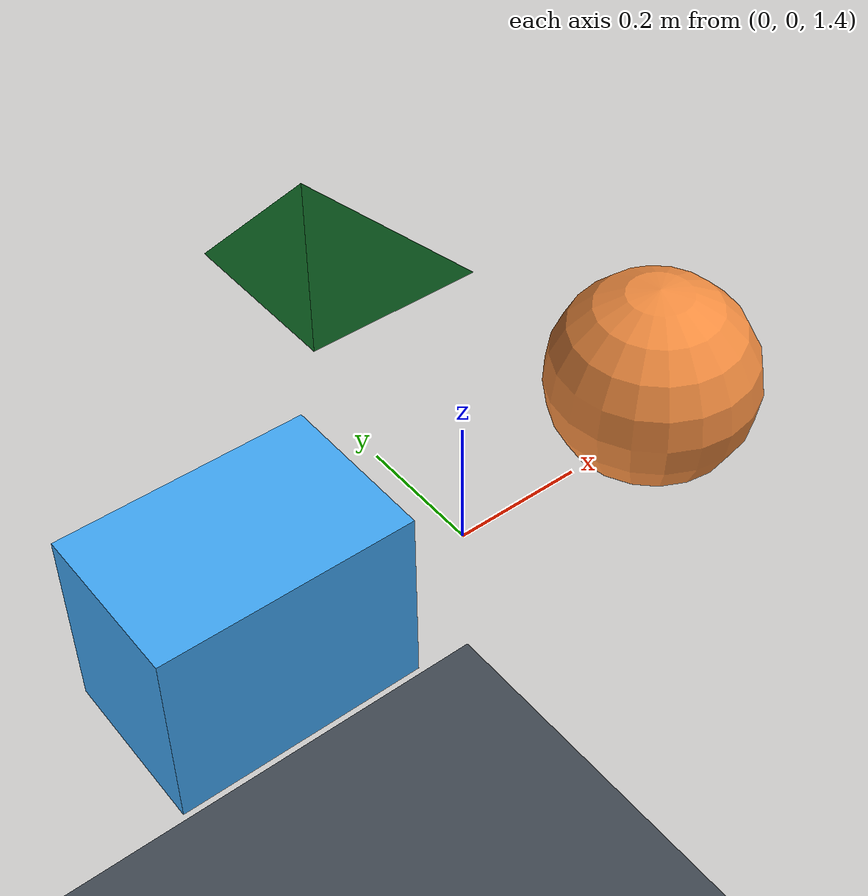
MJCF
<mujoco model="primitive-showcase">
  <option timestep="0.008333333333" gravity="0 0 -9.81"/>
  <asset>
    <texture name="checker" type="2d" builtin="checker" width="16" height="16"
             rgb1="0.1 0.8 0.3" rgb2="0.05 0.15 0.05"/>
    <material name="checker_material" texture="checker" roughness="0.6"/>
    <mesh name="tetrahedron"
          vertex="0 0 0  0.3 0 0  0 0.3 0  0 0 0.3"
          face="0 2 1  0 1 3  0 3 2  1 2 3"/>
  </asset>
  <worldbody>
    <geom name="floor" type="plane" size="3 3 0.1" rgba="0.25 0.28 0.32 1"/>
    <body name="falling_shapes" pos="0 0 1.5">
      <freejoint name="root"/>
      <geom name="box" type="box" pos="-0.35 0 0" size="0.18 0.12 0.14"
            mass="1" rgba="0.25 0.65 0.95 1"/>
      <geom name="sphere" type="sphere" pos="0.35 0 0" size="0.16"
            mass="1" rgba="0.95 0.55 0.25 1"/>
      <geom name="textured_mesh" type="mesh" mesh="tetrahedron"
            material="checker_material" pos="0 0.35 0" mass="0.5"/>
    </body>
  </worldbody>
</mujoco>
